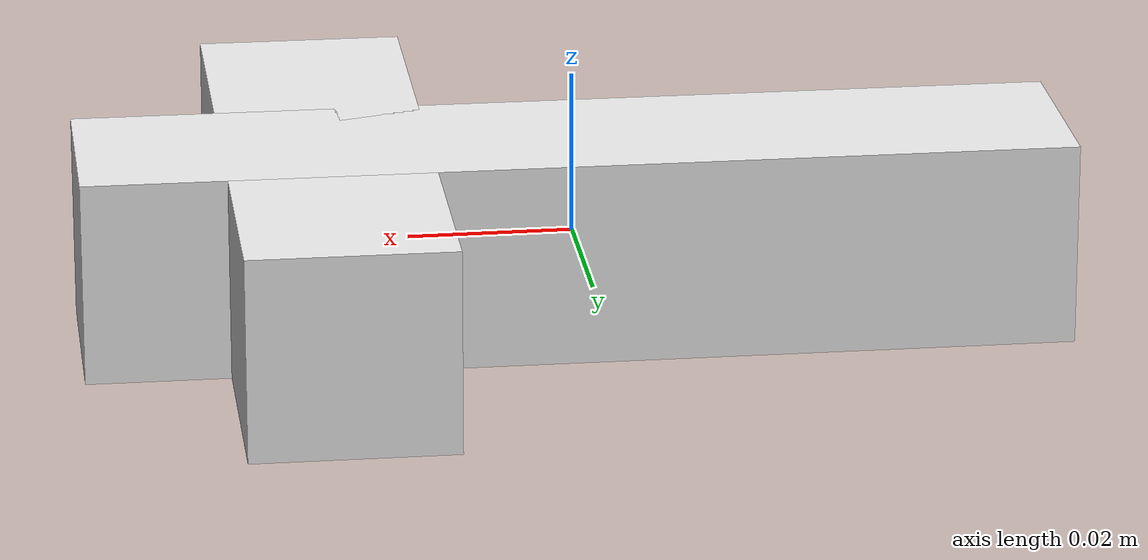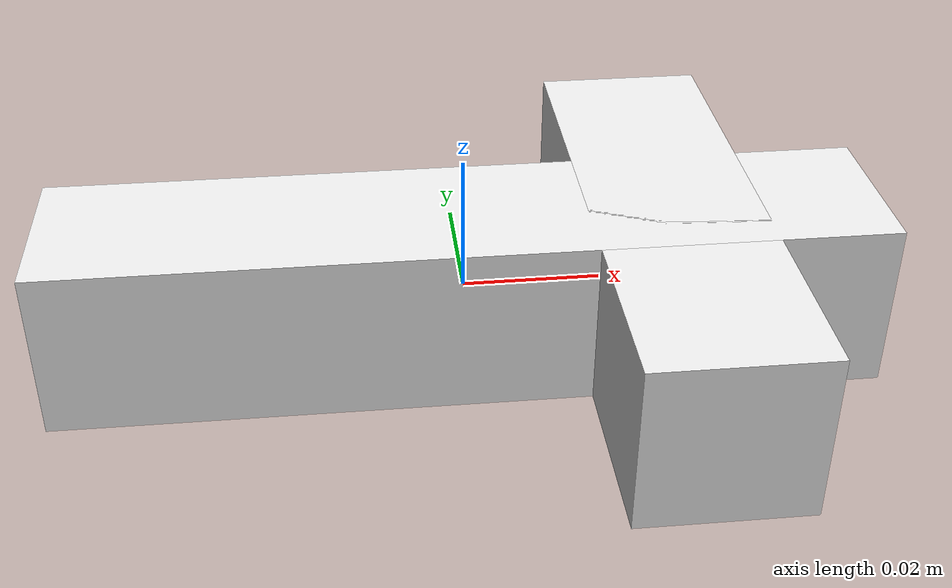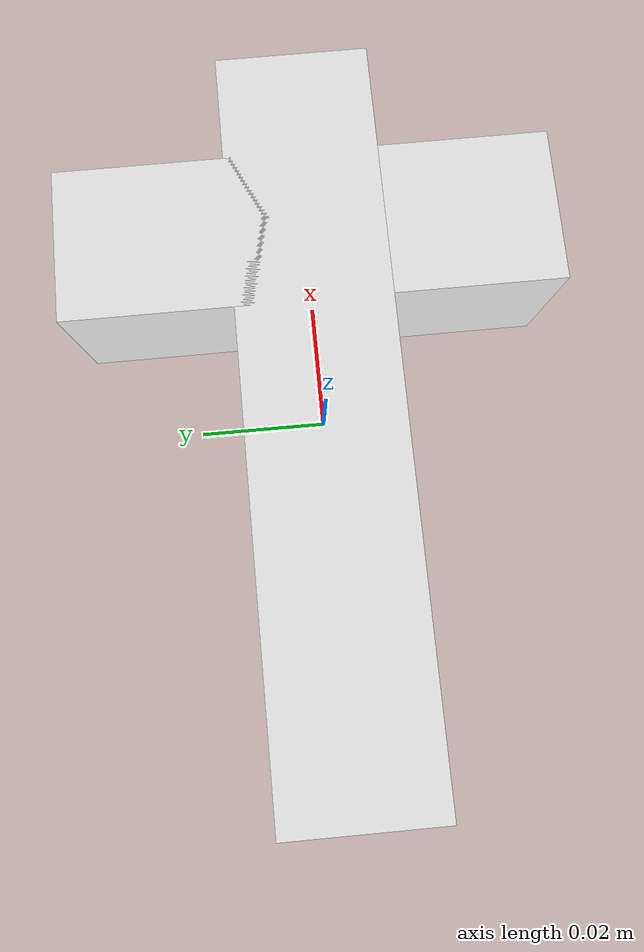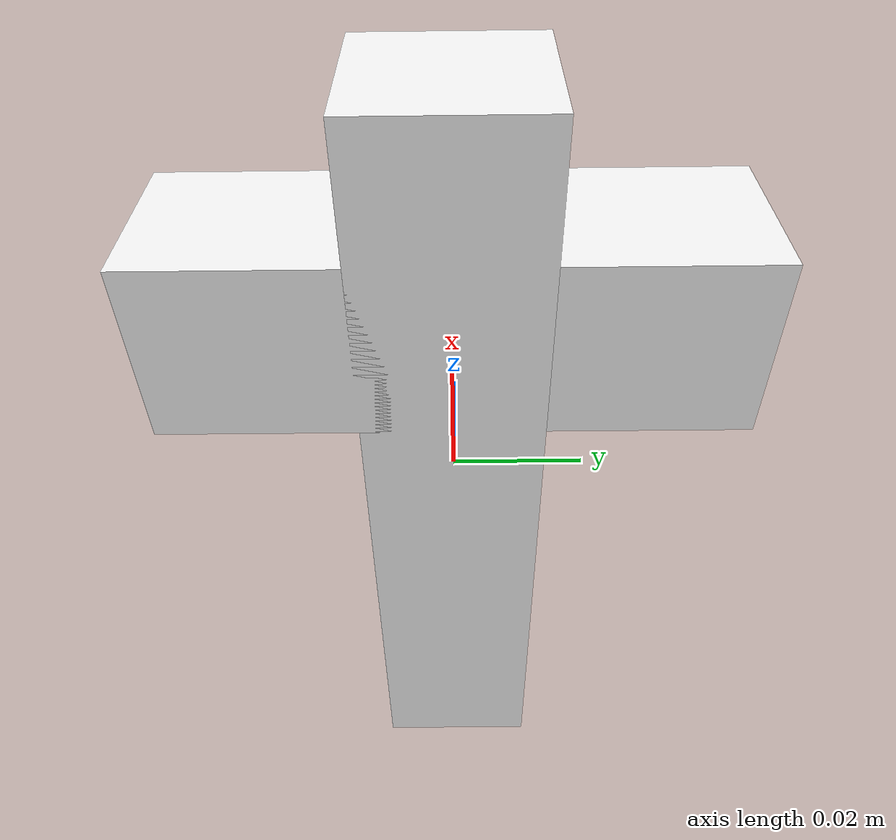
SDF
<?xml version='1.0'?>
<sdf version='1.6'>
  <model name='cross'>
    <link name='link'>
      <inertial>
        <mass>0.15</mass>
        <inertia>
          <ixx>0.0002</ixx> <ixy>0</ixy> <ixz>0</ixz>
          <iyy>0.0002</iyy> <iyz>0</iyz>
          <izz>0.0004</izz>
        </inertia>
      </inertial>

      <visual name='stem_vis'>
        <geometry>
           <box><size>0.12 0.025 0.025</size></box>
        </geometry>
        <material><script><name>Gazebo/White</name></script></material>
      </visual>
      <collision name='stem_col'>
        <geometry>
           <box><size>0.12 0.025 0.025</size></box>
        </geometry>
        <surface>
           <friction><ode><mu>100.0</mu><mu2>100.0</mu2></ode></friction>
           <contact><ode><kp>100000.0</kp><kd>1.0</kd><min_depth>0.001</min_depth></ode></contact>
        </surface>
      </collision>

      <visual name='crossbar_vis'>
        <pose>0.03 0 0 0 0 0</pose>
        <geometry>
           <box><size>0.025 0.08 0.025</size></box>
        </geometry>
        <material><script><name>Gazebo/White</name></script></material>
      </visual>
      <collision name='crossbar_col'>
        <pose>0.03 0 0 0 0 0</pose>
        <geometry>
           <box><size>0.025 0.08 0.025</size></box>
        </geometry>
        <surface>
           <friction><ode><mu>100.0</mu><mu2>100.0</mu2></ode></friction>
           <contact><ode><kp>100000.0</kp><kd>1.0</kd><min_depth>0.001</min_depth></ode></contact>
        </surface>
      </collision>
    </link>
  </model>
</sdf>
